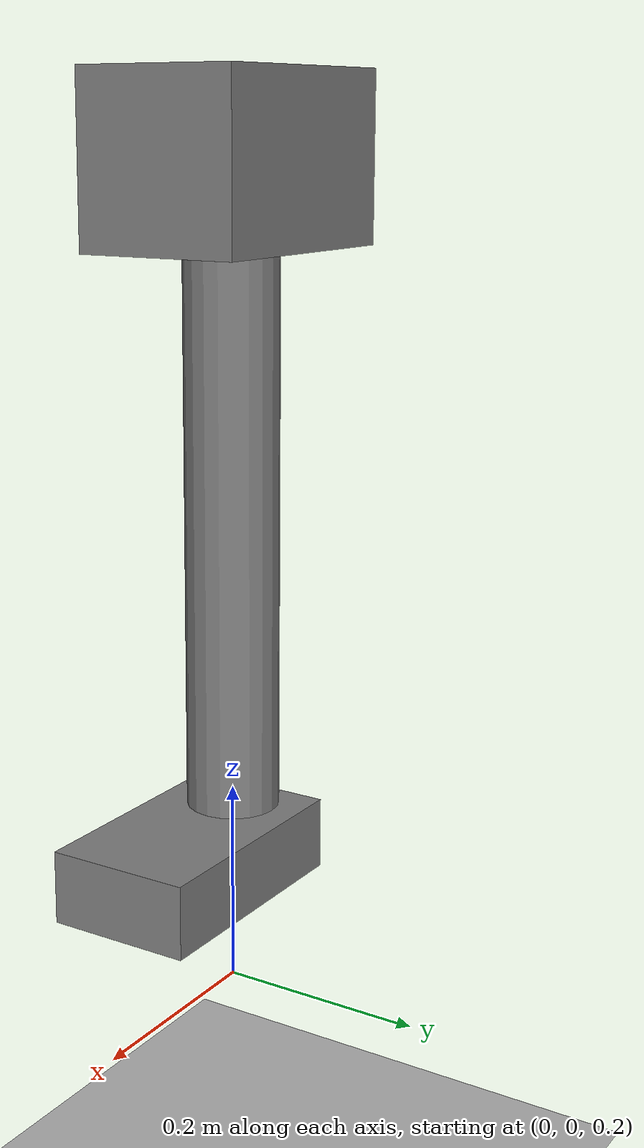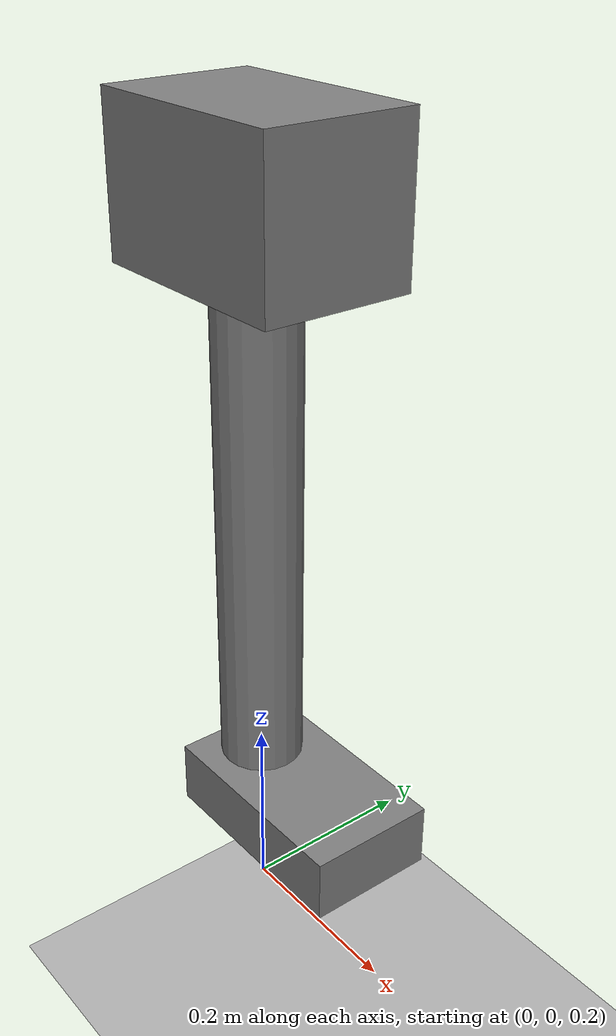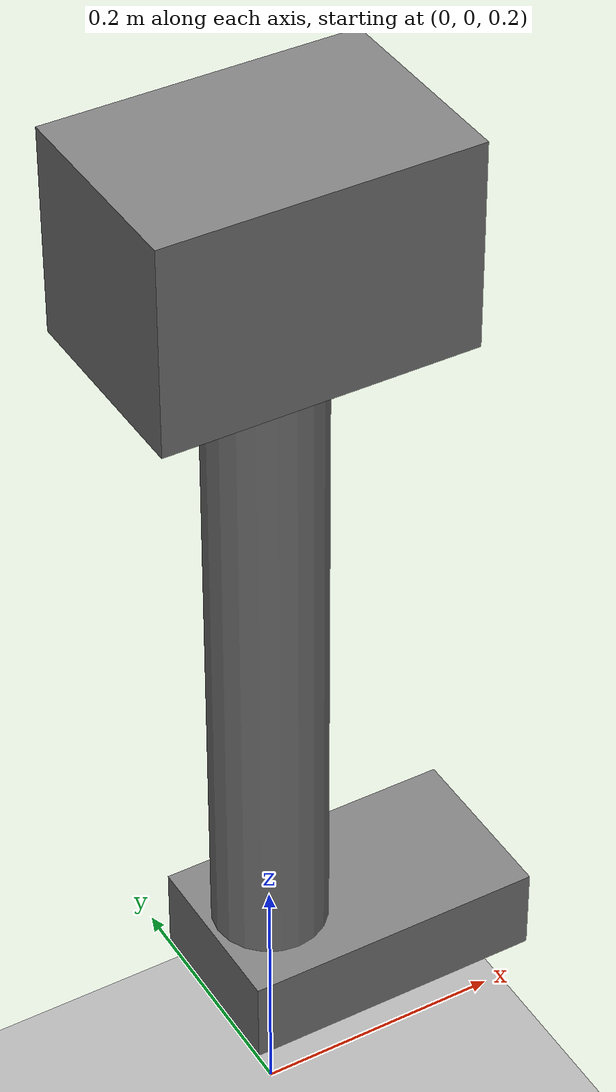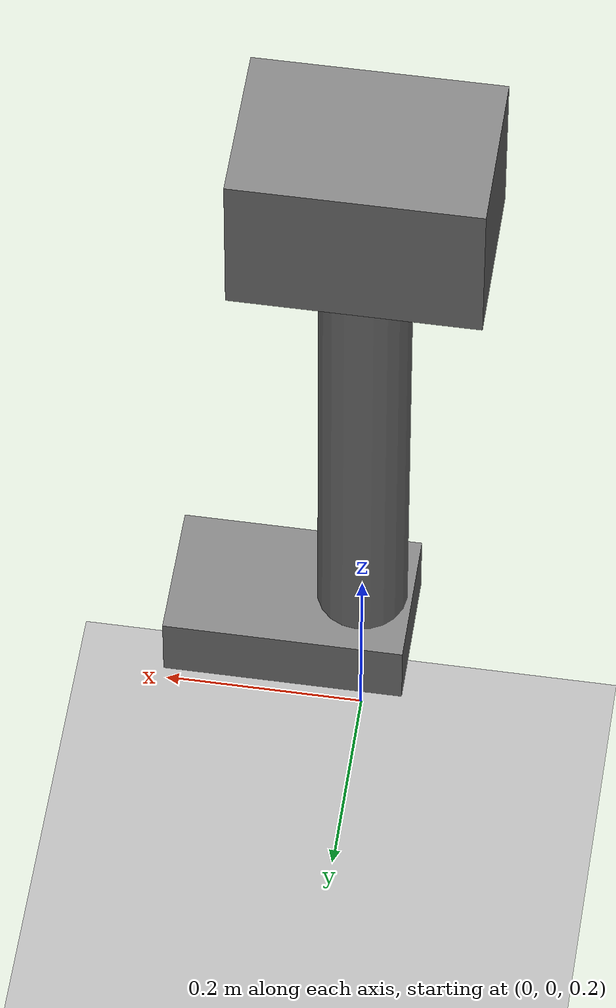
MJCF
<mujoco model="simple_leg_contact">
  <compiler angle="radian"/>
  <option timestep="0.001" integrator="implicitfast" gravity="0 0 -9.81"/>
  <default>
    <geom friction="1.0 0.02 0.001" condim="3"/>
  </default>
  <worldbody>
    <geom name="floor" type="plane" size="3 3 0.1" rgba="0.7 0.7 0.7 1"/>
    <body name="pelvis" pos="0 0 1.0">
      <freejoint name="pelvis_free"/>
      <geom name="pelvis_geom" type="box" size="0.12 0.08 0.08" mass="2.0"/>
      <body name="leg" pos="0 0 -0.08">
        <joint name="hip" type="hinge" axis="0 1 0" range="-1.2 1.2"/>
        <geom name="leg_geom" type="capsule" fromto="0 0 0 0 0 -0.55"
              size="0.045" mass="1.0"/>
        <body name="foot" pos="0 0 -0.57">
          <geom name="foot_geom" type="box" size="0.12 0.07 0.035"
                pos="0.07 0 0" mass="0.4"/>
          <site name="foot_contact_site" pos="0.07 0 -0.035" size="0.02"/>
        </body>
      </body>
    </body>
  </worldbody>
  <sensor>
    <framequat name="pelvis_orientation" objtype="body" objname="pelvis"/>
    <frameangvel name="pelvis_angular_velocity" objtype="body" objname="pelvis"/>
    <jointpos name="hip_position" joint="hip"/>
    <jointvel name="hip_velocity" joint="hip"/>
    <touch name="foot_contact" site="foot_contact_site"/>
  </sensor>
</mujoco>
